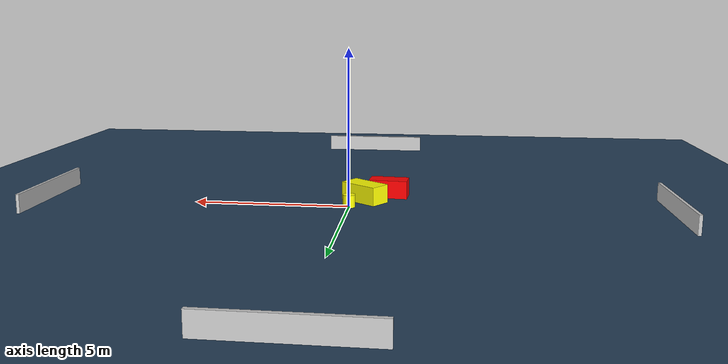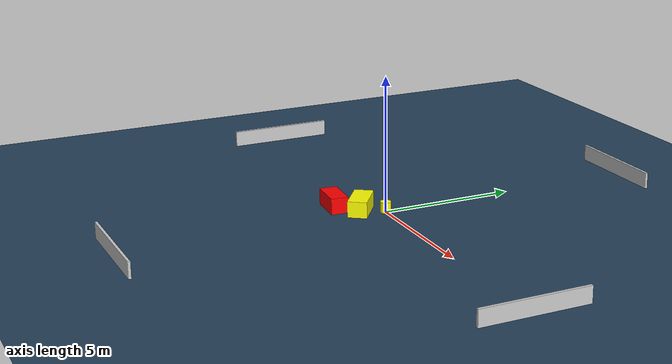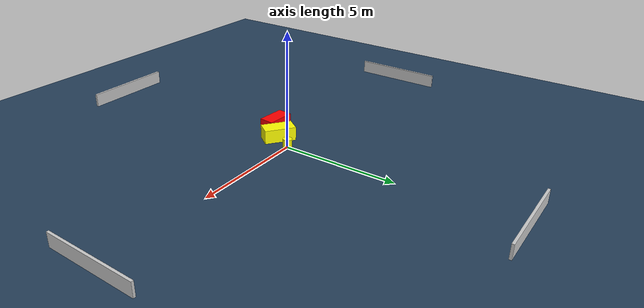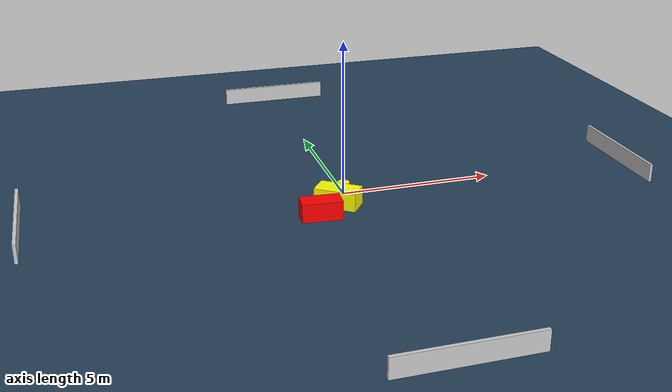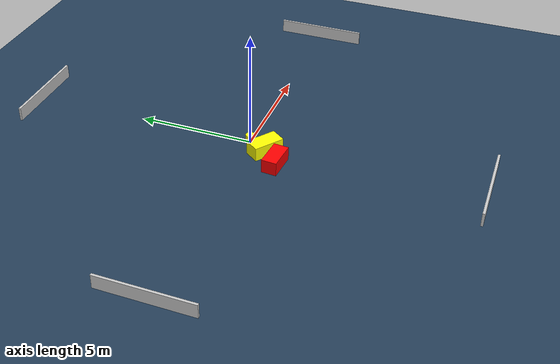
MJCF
<?xml version="1.0" ?>
<mujoco model="generated_environment">
  <option timestep="0.01" integrator="RK4" cone="elliptic"/>
  <default>
    <geom density="1"/>
  </default>
  <asset>
    <texture builtin="gradient" height="3072" name="skybox" rgb1="0.3 0.5 0.7" rgb2="0 0 0" type="skybox" width="512"/>
    <texture builtin="checker" height="300" name="groundplane" rgb1="0.2 0.3 0.4" rgb2="0.1 0.2 0.3" type="2d" width="300"/>
    <material name="groundplane" reflectance="0.2" texrepeat="5 5" texture="groundplane"/>
  </asset>
  <worldbody>
    <light dir="0 0 -1" directional="true" pos="0 0 1.5"/>
    <geom condim="3" friction="0.5 0.005 0.001" material="groundplane" name="floor" pos="0 0 0" size="0 0 0.05" type="plane"/>
    <body name="walls">
      <geom name="wall_1" condim="4" pos="-10.0 0.0 0.3" rgba="0.800000011920929 0.800000011920929 0.800000011920929 1.0" size="0.05 2.0 0.3" type="box"/>
      <geom name="wall_2" condim="4" pos="10.0 0.0 0.3" rgba="0.800000011920929 0.800000011920929 0.800000011920929 1.0" size="0.05 2.0 0.3" type="box"/>
      <geom name="wall_3" condim="4" pos="0.0 -10.0 0.3" rgba="0.800000011920929 0.800000011920929 0.800000011920929 1.0" size="2.0 0.05 0.3" type="box"/>
      <geom name="wall_4" condim="4" pos="0.0 10.0 0.3" rgba="0.800000011920929 0.800000011920929 0.800000011920929 1.0" size="2.0 0.05 0.3" type="box"/>
    </body>
    <body name="robot">
      <joint name="joint_x" type="slide" pos="0 0 0" axis="1 0 0"/>
      <joint name="joint_y" type="slide" pos="0 0 0" axis="0 1 0"/>
      <geom name="robot" type="cylinder" pos="0.0 0.0 0.2" size="0.2 0.2 0.0" mass="5.0" friction="1.0 0.005 0.0001" condim="4" rgba="1.0 1.0 0.0 1.0"/>
    </body>
    <body name="obstacle_1_movable">
      <geom name="obstacle_1_movable" condim="4" pos="-0.417799218033392 -0.7978714586441942 0.3" euler="0 0 233.85739988203548" friction="0.0 0.005 0.001" rgba="1.0 1.0 0.0 1.0" size="0.35319900239467683 0.6820991179164118 0.3" type="box" mass="0.1"/>
      <joint type="free"/>
    </body>
    <body name="obstacle_2_static">
      <geom name="obstacle_2_static" condim="4" pos="-1.171664006460066 -1.5118621581896048 0.3" euler="0 0 265.5024026200751" friction="0.0 0.005 0.001" rgba="1.0 0.0 0.0 1.0" size="0.3240167703319705 0.6324625778141626 0.3" type="box"/>
    </body>
  </worldbody>
  <actuator>
    <motor name="actuator_x" joint="joint_x" gear="1" ctrlrange="-1 1"/>
    <motor name="actuator_y" joint="joint_y" gear="1" ctrlrange="-1 1"/>
  </actuator>
</mujoco>
